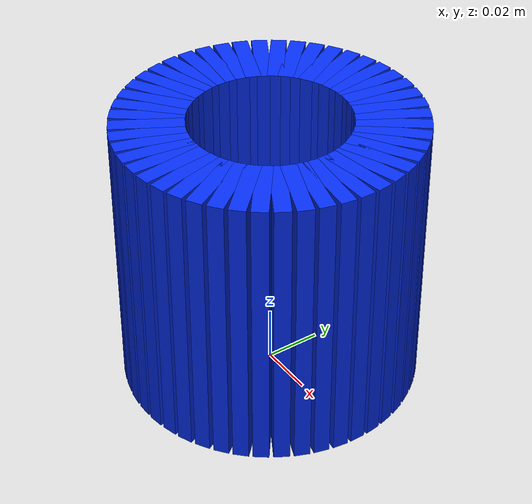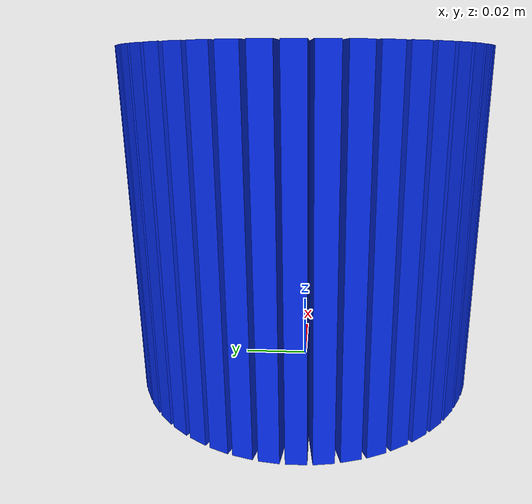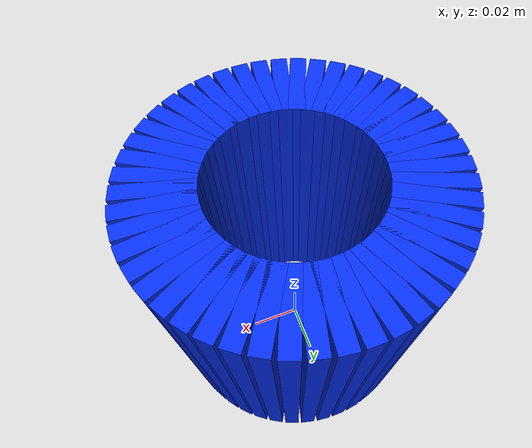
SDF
<?xml version="1.0"?>
<sdf version="1.6">
  <model name="blue_insert_socket">
    <static>true</static>
    <link name="ring">
      <pose>0 0 0 0 0 0</pose>

      <collision name="collision_00"><pose>0.0400 0.0000 0.050 0 0 0.0000</pose><geometry><box><size>0.025 0.0055 0.100</size></box></geometry></collision>
      <collision name="collision_01"><pose>0.0397 0.0052 0.050 0 0 0.1309</pose><geometry><box><size>0.025 0.0055 0.100</size></box></geometry></collision>
      <collision name="collision_02"><pose>0.0386 0.0104 0.050 0 0 0.2618</pose><geometry><box><size>0.025 0.0055 0.100</size></box></geometry></collision>
      <collision name="collision_03"><pose>0.0370 0.0153 0.050 0 0 0.3927</pose><geometry><box><size>0.025 0.0055 0.100</size></box></geometry></collision>
      <collision name="collision_04"><pose>0.0346 0.0200 0.050 0 0 0.5236</pose><geometry><box><size>0.025 0.0055 0.100</size></box></geometry></collision>
      <collision name="collision_05"><pose>0.0317 0.0244 0.050 0 0 0.6545</pose><geometry><box><size>0.025 0.0055 0.100</size></box></geometry></collision>
      <collision name="collision_06"><pose>0.0283 0.0283 0.050 0 0 0.7854</pose><geometry><box><size>0.025 0.0055 0.100</size></box></geometry></collision>
      <collision name="collision_07"><pose>0.0244 0.0317 0.050 0 0 0.9163</pose><geometry><box><size>0.025 0.0055 0.100</size></box></geometry></collision>
      <collision name="collision_08"><pose>0.0200 0.0346 0.050 0 0 1.0472</pose><geometry><box><size>0.025 0.0055 0.100</size></box></geometry></collision>
      <collision name="collision_09"><pose>0.0153 0.0370 0.050 0 0 1.1781</pose><geometry><box><size>0.025 0.0055 0.100</size></box></geometry></collision>
      <collision name="collision_10"><pose>0.0104 0.0386 0.050 0 0 1.3090</pose><geometry><box><size>0.025 0.0055 0.100</size></box></geometry></collision>
      <collision name="collision_11"><pose>0.0052 0.0397 0.050 0 0 1.4399</pose><geometry><box><size>0.025 0.0055 0.100</size></box></geometry></collision>
      <collision name="collision_12"><pose>0.0000 0.0400 0.050 0 0 1.5708</pose><geometry><box><size>0.025 0.0055 0.100</size></box></geometry></collision>
      <collision name="collision_13"><pose>-0.0052 0.0397 0.050 0 0 1.7017</pose><geometry><box><size>0.025 0.0055 0.100</size></box></geometry></collision>
      <collision name="collision_14"><pose>-0.0104 0.0386 0.050 0 0 1.8326</pose><geometry><box><size>0.025 0.0055 0.100</size></box></geometry></collision>
      <collision name="collision_15"><pose>-0.0153 0.0370 0.050 0 0 1.9635</pose><geometry><box><size>0.025 0.0055 0.100</size></box></geometry></collision>
      <collision name="collision_16"><pose>-0.0200 0.0346 0.050 0 0 2.0944</pose><geometry><box><size>0.025 0.0055 0.100</size></box></geometry></collision>
      <collision name="collision_17"><pose>-0.0244 0.0317 0.050 0 0 2.2253</pose><geometry><box><size>0.025 0.0055 0.100</size></box></geometry></collision>
      <collision name="collision_18"><pose>-0.0283 0.0283 0.050 0 0 2.3562</pose><geometry><box><size>0.025 0.0055 0.100</size></box></geometry></collision>
      <collision name="collision_19"><pose>-0.0317 0.0244 0.050 0 0 2.4871</pose><geometry><box><size>0.025 0.0055 0.100</size></box></geometry></collision>
      <collision name="collision_20"><pose>-0.0346 0.0200 0.050 0 0 2.6180</pose><geometry><box><size>0.025 0.0055 0.100</size></box></geometry></collision>
      <collision name="collision_21"><pose>-0.0370 0.0153 0.050 0 0 2.7489</pose><geometry><box><size>0.025 0.0055 0.100</size></box></geometry></collision>
      <collision name="collision_22"><pose>-0.0386 0.0104 0.050 0 0 2.8798</pose><geometry><box><size>0.025 0.0055 0.100</size></box></geometry></collision>
      <collision name="collision_23"><pose>-0.0397 0.0052 0.050 0 0 3.0107</pose><geometry><box><size>0.025 0.0055 0.100</size></box></geometry></collision>
      <collision name="collision_24"><pose>-0.0400 0.0000 0.050 0 0 3.1416</pose><geometry><box><size>0.025 0.0055 0.100</size></box></geometry></collision>
      <collision name="collision_25"><pose>-0.0397 -0.0052 0.050 0 0 3.2725</pose><geometry><box><size>0.025 0.0055 0.100</size></box></geometry></collision>
      <collision name="collision_26"><pose>-0.0386 -0.0104 0.050 0 0 3.4034</pose><geometry><box><size>0.025 0.0055 0.100</size></box></geometry></collision>
      <collision name="collision_27"><pose>-0.0370 -0.0153 0.050 0 0 3.5343</pose><geometry><box><size>0.025 0.0055 0.100</size></box></geometry></collision>
      <collision name="collision_28"><pose>-0.0346 -0.0200 0.050 0 0 3.6652</pose><geometry><box><size>0.025 0.0055 0.100</size></box></geometry></collision>
      <collision name="collision_29"><pose>-0.0317 -0.0244 0.050 0 0 3.7961</pose><geometry><box><size>0.025 0.0055 0.100</size></box></geometry></collision>
      <collision name="collision_30"><pose>-0.0283 -0.0283 0.050 0 0 3.9270</pose><geometry><box><size>0.025 0.0055 0.100</size></box></geometry></collision>
      <collision name="collision_31"><pose>-0.0244 -0.0317 0.050 0 0 4.0579</pose><geometry><box><size>0.025 0.0055 0.100</size></box></geometry></collision>
      <collision name="collision_32"><pose>-0.0200 -0.0346 0.050 0 0 4.1888</pose><geometry><box><size>0.025 0.0055 0.100</size></box></geometry></collision>
      <collision name="collision_33"><pose>-0.0153 -0.0370 0.050 0 0 4.3197</pose><geometry><box><size>0.025 0.0055 0.100</size></box></geometry></collision>
      <collision name="collision_34"><pose>-0.0104 -0.0386 0.050 0 0 4.4506</pose><geometry><box><size>0.025 0.0055 0.100</size></box></geometry></collision>
      <collision name="collision_35"><pose>-0.0052 -0.0397 0.050 0 0 4.5815</pose><geometry><box><size>0.025 0.0055 0.100</size></box></geometry></collision>
      <collision name="collision_36"><pose>0.0000 -0.0400 0.050 0 0 4.7124</pose><geometry><box><size>0.025 0.0055 0.100</size></box></geometry></collision>
      <collision name="collision_37"><pose>0.0052 -0.0397 0.050 0 0 4.8433</pose><geometry><box><size>0.025 0.0055 0.100</size></box></geometry></collision>
      <collision name="collision_38"><pose>0.0104 -0.0386 0.050 0 0 4.9742</pose><geometry><box><size>0.025 0.0055 0.100</size></box></geometry></collision>
      <collision name="collision_39"><pose>0.0153 -0.0370 0.050 0 0 5.1051</pose><geometry><box><size>0.025 0.0055 0.100</size></box></geometry></collision>
      <collision name="collision_40"><pose>0.0200 -0.0346 0.050 0 0 5.2360</pose><geometry><box><size>0.025 0.0055 0.100</size></box></geometry></collision>
      <collision name="collision_41"><pose>0.0244 -0.0317 0.050 0 0 5.3669</pose><geometry><box><size>0.025 0.0055 0.100</size></box></geometry></collision>
      <collision name="collision_42"><pose>0.0283 -0.0283 0.050 0 0 5.4978</pose><geometry><box><size>0.025 0.0055 0.100</size></box></geometry></collision>
      <collision name="collision_43"><pose>0.0317 -0.0244 0.050 0 0 5.6287</pose><geometry><box><size>0.025 0.0055 0.100</size></box></geometry></collision>
      <collision name="collision_44"><pose>0.0346 -0.0200 0.050 0 0 5.7596</pose><geometry><box><size>0.025 0.0055 0.100</size></box></geometry></collision>
      <collision name="collision_45"><pose>0.0370 -0.0153 0.050 0 0 5.8905</pose><geometry><box><size>0.025 0.0055 0.100</size></box></geometry></collision>
      <collision name="collision_46"><pose>0.0386 -0.0104 0.050 0 0 6.0214</pose><geometry><box><size>0.025 0.0055 0.100</size></box></geometry></collision>
      <collision name="collision_47"><pose>0.0397 -0.0052 0.050 0 0 6.1523</pose><geometry><box><size>0.025 0.0055 0.100</size></box></geometry></collision>

      <visual name="visual_00"><pose>0.0400 0.0000 0.050 0 0 0.0000</pose><geometry><box><size>0.025 0.0055 0.100</size></box></geometry><material><ambient>0.02 0.10 0.85 1</ambient><diffuse>0.02 0.18 0.95 1</diffuse><specular>0.12 0.12 0.20 1</specular></material></visual>
      <visual name="visual_01"><pose>0.0397 0.0052 0.050 0 0 0.1309</pose><geometry><box><size>0.025 0.0055 0.100</size></box></geometry><material><ambient>0.02 0.10 0.85 1</ambient><diffuse>0.02 0.18 0.95 1</diffuse><specular>0.12 0.12 0.20 1</specular></material></visual>
      <visual name="visual_02"><pose>0.0386 0.0104 0.050 0 0 0.2618</pose><geometry><box><size>0.025 0.0055 0.100</size></box></geometry><material><ambient>0.02 0.10 0.85 1</ambient><diffuse>0.02 0.18 0.95 1</diffuse><specular>0.12 0.12 0.20 1</specular></material></visual>
      <visual name="visual_03"><pose>0.0370 0.0153 0.050 0 0 0.3927</pose><geometry><box><size>0.025 0.0055 0.100</size></box></geometry><material><ambient>0.02 0.10 0.85 1</ambient><diffuse>0.02 0.18 0.95 1</diffuse><specular>0.12 0.12 0.20 1</specular></material></visual>
      <visual name="visual_04"><pose>0.0346 0.0200 0.050 0 0 0.5236</pose><geometry><box><size>0.025 0.0055 0.100</size></box></geometry><material><ambient>0.02 0.10 0.85 1</ambient><diffuse>0.02 0.18 0.95 1</diffuse><specular>0.12 0.12 0.20 1</specular></material></visual>
      <visual name="visual_05"><pose>0.0317 0.0244 0.050 0 0 0.6545</pose><geometry><box><size>0.025 0.0055 0.100</size></box></geometry><material><ambient>0.02 0.10 0.85 1</ambient><diffuse>0.02 0.18 0.95 1</diffuse><specular>0.12 0.12 0.20 1</specular></material></visual>
      <visual name="visual_06"><pose>0.0283 0.0283 0.050 0 0 0.7854</pose><geometry><box><size>0.025 0.0055 0.100</size></box></geometry><material><ambient>0.02 0.10 0.85 1</ambient><diffuse>0.02 0.18 0.95 1</diffuse><specular>0.12 0.12 0.20 1</specular></material></visual>
      <visual name="visual_07"><pose>0.0244 0.0317 0.050 0 0 0.9163</pose><geometry><box><size>0.025 0.0055 0.100</size></box></geometry><material><ambient>0.02 0.10 0.85 1</ambient><diffuse>0.02 0.18 0.95 1</diffuse><specular>0.12 0.12 0.20 1</specular></material></visual>
      <visual name="visual_08"><pose>0.0200 0.0346 0.050 0 0 1.0472</pose><geometry><box><size>0.025 0.0055 0.100</size></box></geometry><material><ambient>0.02 0.10 0.85 1</ambient><diffuse>0.02 0.18 0.95 1</diffuse><specular>0.12 0.12 0.20 1</specular></material></visual>
      <visual name="visual_09"><pose>0.0153 0.0370 0.050 0 0 1.1781</pose><geometry><box><size>0.025 0.0055 0.100</size></box></geometry><material><ambient>0.02 0.10 0.85 1</ambient><diffuse>0.02 0.18 0.95 1</diffuse><specular>0.12 0.12 0.20 1</specular></material></visual>
      <visual name="visual_10"><pose>0.0104 0.0386 0.050 0 0 1.3090</pose><geometry><box><size>0.025 0.0055 0.100</size></box></geometry><material><ambient>0.02 0.10 0.85 1</ambient><diffuse>0.02 0.18 0.95 1</diffuse><specular>0.12 0.12 0.20 1</specular></material></visual>
      <visual name="visual_11"><pose>0.0052 0.0397 0.050 0 0 1.4399</pose><geometry><box><size>0.025 0.0055 0.100</size></box></geometry><material><ambient>0.02 0.10 0.85 1</ambient><diffuse>0.02 0.18 0.95 1</diffuse><specular>0.12 0.12 0.20 1</specular></material></visual>
      <visual name="visual_12"><pose>0.0000 0.0400 0.050 0 0 1.5708</pose><geometry><box><size>0.025 0.0055 0.100</size></box></geometry><material><ambient>0.02 0.10 0.85 1</ambient><diffuse>0.02 0.18 0.95 1</diffuse><specular>0.12 0.12 0.20 1</specular></material></visual>
      <visual name="visual_13"><pose>-0.0052 0.0397 0.050 0 0 1.7017</pose><geometry><box><size>0.025 0.0055 0.100</size></box></geometry><material><ambient>0.02 0.10 0.85 1</ambient><diffuse>0.02 0.18 0.95 1</diffuse><specular>0.12 0.12 0.20 1</specular></material></visual>
      <visual name="visual_14"><pose>-0.0104 0.0386 0.050 0 0 1.8326</pose><geometry><box><size>0.025 0.0055 0.100</size></box></geometry><material><ambient>0.02 0.10 0.85 1</ambient><diffuse>0.02 0.18 0.95 1</diffuse><specular>0.12 0.12 0.20 1</specular></material></visual>
      <visual name="visual_15"><pose>-0.0153 0.0370 0.050 0 0 1.9635</pose><geometry><box><size>0.025 0.0055 0.100</size></box></geometry><material><ambient>0.02 0.10 0.85 1</ambient><diffuse>0.02 0.18 0.95 1</diffuse><specular>0.12 0.12 0.20 1</specular></material></visual>
      <visual name="visual_16"><pose>-0.0200 0.0346 0.050 0 0 2.0944</pose><geometry><box><size>0.025 0.0055 0.100</size></box></geometry><material><ambient>0.02 0.10 0.85 1</ambient><diffuse>0.02 0.18 0.95 1</diffuse><specular>0.12 0.12 0.20 1</specular></material></visual>
      <visual name="visual_17"><pose>-0.0244 0.0317 0.050 0 0 2.2253</pose><geometry><box><size>0.025 0.0055 0.100</size></box></geometry><material><ambient>0.02 0.10 0.85 1</ambient><diffuse>0.02 0.18 0.95 1</diffuse><specular>0.12 0.12 0.20 1</specular></material></visual>
      <visual name="visual_18"><pose>-0.0283 0.0283 0.050 0 0 2.3562</pose><geometry><box><size>0.025 0.0055 0.100</size></box></geometry><material><ambient>0.02 0.10 0.85 1</ambient><diffuse>0.02 0.18 0.95 1</diffuse><specular>0.12 0.12 0.20 1</specular></material></visual>
      <visual name="visual_19"><pose>-0.0317 0.0244 0.050 0 0 2.4871</pose><geometry><box><size>0.025 0.0055 0.100</size></box></geometry><material><ambient>0.02 0.10 0.85 1</ambient><diffuse>0.02 0.18 0.95 1</diffuse><specular>0.12 0.12 0.20 1</specular></material></visual>
      <visual name="visual_20"><pose>-0.0346 0.0200 0.050 0 0 2.6180</pose><geometry><box><size>0.025 0.0055 0.100</size></box></geometry><material><ambient>0.02 0.10 0.85 1</ambient><diffuse>0.02 0.18 0.95 1</diffuse><specular>0.12 0.12 0.20 1</specular></material></visual>
      <visual name="visual_21"><pose>-0.0370 0.0153 0.050 0 0 2.7489</pose><geometry><box><size>0.025 0.0055 0.100</size></box></geometry><material><ambient>0.02 0.10 0.85 1</ambient><diffuse>0.02 0.18 0.95 1</diffuse><specular>0.12 0.12 0.20 1</specular></material></visual>
      <visual name="visual_22"><pose>-0.0386 0.0104 0.050 0 0 2.8798</pose><geometry><box><size>0.025 0.0055 0.100</size></box></geometry><material><ambient>0.02 0.10 0.85 1</ambient><diffuse>0.02 0.18 0.95 1</diffuse><specular>0.12 0.12 0.20 1</specular></material></visual>
      <visual name="visual_23"><pose>-0.0397 0.0052 0.050 0 0 3.0107</pose><geometry><box><size>0.025 0.0055 0.100</size></box></geometry><material><ambient>0.02 0.10 0.85 1</ambient><diffuse>0.02 0.18 0.95 1</diffuse><specular>0.12 0.12 0.20 1</specular></material></visual>
      <visual name="visual_24"><pose>-0.0400 0.0000 0.050 0 0 3.1416</pose><geometry><box><size>0.025 0.0055 0.100</size></box></geometry><material><ambient>0.02 0.10 0.85 1</ambient><diffuse>0.02 0.18 0.95 1</diffuse><specular>0.12 0.12 0.20 1</specular></material></visual>
      <visual name="visual_25"><pose>-0.0397 -0.0052 0.050 0 0 3.2725</pose><geometry><box><size>0.025 0.0055 0.100</size></box></geometry><material><ambient>0.02 0.10 0.85 1</ambient><diffuse>0.02 0.18 0.95 1</diffuse><specular>0.12 0.12 0.20 1</specular></material></visual>
      <visual name="visual_26"><pose>-0.0386 -0.0104 0.050 0 0 3.4034</pose><geometry><box><size>0.025 0.0055 0.100</size></box></geometry><material><ambient>0.02 0.10 0.85 1</ambient><diffuse>0.02 0.18 0.95 1</diffuse><specular>0.12 0.12 0.20 1</specular></material></visual>
      <visual name="visual_27"><pose>-0.0370 -0.0153 0.050 0 0 3.5343</pose><geometry><box><size>0.025 0.0055 0.100</size></box></geometry><material><ambient>0.02 0.10 0.85 1</ambient><diffuse>0.02 0.18 0.95 1</diffuse><specular>0.12 0.12 0.20 1</specular></material></visual>
      <visual name="visual_28"><pose>-0.0346 -0.0200 0.050 0 0 3.6652</pose><geometry><box><size>0.025 0.0055 0.100</size></box></geometry><material><ambient>0.02 0.10 0.85 1</ambient><diffuse>0.02 0.18 0.95 1</diffuse><specular>0.12 0.12 0.20 1</specular></material></visual>
      <visual name="visual_29"><pose>-0.0317 -0.0244 0.050 0 0 3.7961</pose><geometry><box><size>0.025 0.0055 0.100</size></box></geometry><material><ambient>0.02 0.10 0.85 1</ambient><diffuse>0.02 0.18 0.95 1</diffuse><specular>0.12 0.12 0.20 1</specular></material></visual>
      <visual name="visual_30"><pose>-0.0283 -0.0283 0.050 0 0 3.9270</pose><geometry><box><size>0.025 0.0055 0.100</size></box></geometry><material><ambient>0.02 0.10 0.85 1</ambient><diffuse>0.02 0.18 0.95 1</diffuse><specular>0.12 0.12 0.20 1</specular></material></visual>
      <visual name="visual_31"><pose>-0.0244 -0.0317 0.050 0 0 4.0579</pose><geometry><box><size>0.025 0.0055 0.100</size></box></geometry><material><ambient>0.02 0.10 0.85 1</ambient><diffuse>0.02 0.18 0.95 1</diffuse><specular>0.12 0.12 0.20 1</specular></material></visual>
      <visual name="visual_32"><pose>-0.0200 -0.0346 0.050 0 0 4.1888</pose><geometry><box><size>0.025 0.0055 0.100</size></box></geometry><material><ambient>0.02 0.10 0.85 1</ambient><diffuse>0.02 0.18 0.95 1</diffuse><specular>0.12 0.12 0.20 1</specular></material></visual>
      <visual name="visual_33"><pose>-0.0153 -0.0370 0.050 0 0 4.3197</pose><geometry><box><size>0.025 0.0055 0.100</size></box></geometry><material><ambient>0.02 0.10 0.85 1</ambient><diffuse>0.02 0.18 0.95 1</diffuse><specular>0.12 0.12 0.20 1</specular></material></visual>
      <visual name="visual_34"><pose>-0.0104 -0.0386 0.050 0 0 4.4506</pose><geometry><box><size>0.025 0.0055 0.100</size></box></geometry><material><ambient>0.02 0.10 0.85 1</ambient><diffuse>0.02 0.18 0.95 1</diffuse><specular>0.12 0.12 0.20 1</specular></material></visual>
      <visual name="visual_35"><pose>-0.0052 -0.0397 0.050 0 0 4.5815</pose><geometry><box><size>0.025 0.0055 0.100</size></box></geometry><material><ambient>0.02 0.10 0.85 1</ambient><diffuse>0.02 0.18 0.95 1</diffuse><specular>0.12 0.12 0.20 1</specular></material></visual>
      <visual name="visual_36"><pose>0.0000 -0.0400 0.050 0 0 4.7124</pose><geometry><box><size>0.025 0.0055 0.100</size></box></geometry><material><ambient>0.02 0.10 0.85 1</ambient><diffuse>0.02 0.18 0.95 1</diffuse><specular>0.12 0.12 0.20 1</specular></material></visual>
      <visual name="visual_37"><pose>0.0052 -0.0397 0.050 0 0 4.8433</pose><geometry><box><size>0.025 0.0055 0.100</size></box></geometry><material><ambient>0.02 0.10 0.85 1</ambient><diffuse>0.02 0.18 0.95 1</diffuse><specular>0.12 0.12 0.20 1</specular></material></visual>
      <visual name="visual_38"><pose>0.0104 -0.0386 0.050 0 0 4.9742</pose><geometry><box><size>0.025 0.0055 0.100</size></box></geometry><material><ambient>0.02 0.10 0.85 1</ambient><diffuse>0.02 0.18 0.95 1</diffuse><specular>0.12 0.12 0.20 1</specular></material></visual>
      <visual name="visual_39"><pose>0.0153 -0.0370 0.050 0 0 5.1051</pose><geometry><box><size>0.025 0.0055 0.100</size></box></geometry><material><ambient>0.02 0.10 0.85 1</ambient><diffuse>0.02 0.18 0.95 1</diffuse><specular>0.12 0.12 0.20 1</specular></material></visual>
      <visual name="visual_40"><pose>0.0200 -0.0346 0.050 0 0 5.2360</pose><geometry><box><size>0.025 0.0055 0.100</size></box></geometry><material><ambient>0.02 0.10 0.85 1</ambient><diffuse>0.02 0.18 0.95 1</diffuse><specular>0.12 0.12 0.20 1</specular></material></visual>
      <visual name="visual_41"><pose>0.0244 -0.0317 0.050 0 0 5.3669</pose><geometry><box><size>0.025 0.0055 0.100</size></box></geometry><material><ambient>0.02 0.10 0.85 1</ambient><diffuse>0.02 0.18 0.95 1</diffuse><specular>0.12 0.12 0.20 1</specular></material></visual>
      <visual name="visual_42"><pose>0.0283 -0.0283 0.050 0 0 5.4978</pose><geometry><box><size>0.025 0.0055 0.100</size></box></geometry><material><ambient>0.02 0.10 0.85 1</ambient><diffuse>0.02 0.18 0.95 1</diffuse><specular>0.12 0.12 0.20 1</specular></material></visual>
      <visual name="visual_43"><pose>0.0317 -0.0244 0.050 0 0 5.6287</pose><geometry><box><size>0.025 0.0055 0.100</size></box></geometry><material><ambient>0.02 0.10 0.85 1</ambient><diffuse>0.02 0.18 0.95 1</diffuse><specular>0.12 0.12 0.20 1</specular></material></visual>
      <visual name="visual_44"><pose>0.0346 -0.0200 0.050 0 0 5.7596</pose><geometry><box><size>0.025 0.0055 0.100</size></box></geometry><material><ambient>0.02 0.10 0.85 1</ambient><diffuse>0.02 0.18 0.95 1</diffuse><specular>0.12 0.12 0.20 1</specular></material></visual>
      <visual name="visual_45"><pose>0.0370 -0.0153 0.050 0 0 5.8905</pose><geometry><box><size>0.025 0.0055 0.100</size></box></geometry><material><ambient>0.02 0.10 0.85 1</ambient><diffuse>0.02 0.18 0.95 1</diffuse><specular>0.12 0.12 0.20 1</specular></material></visual>
      <visual name="visual_46"><pose>0.0386 -0.0104 0.050 0 0 6.0214</pose><geometry><box><size>0.025 0.0055 0.100</size></box></geometry><material><ambient>0.02 0.10 0.85 1</ambient><diffuse>0.02 0.18 0.95 1</diffuse><specular>0.12 0.12 0.20 1</specular></material></visual>
      <visual name="visual_47"><pose>0.0397 -0.0052 0.050 0 0 6.1523</pose><geometry><box><size>0.025 0.0055 0.100</size></box></geometry><material><ambient>0.02 0.10 0.85 1</ambient><diffuse>0.02 0.18 0.95 1</diffuse><specular>0.12 0.12 0.20 1</specular></material></visual>
    </link>
  </model>
</sdf>
